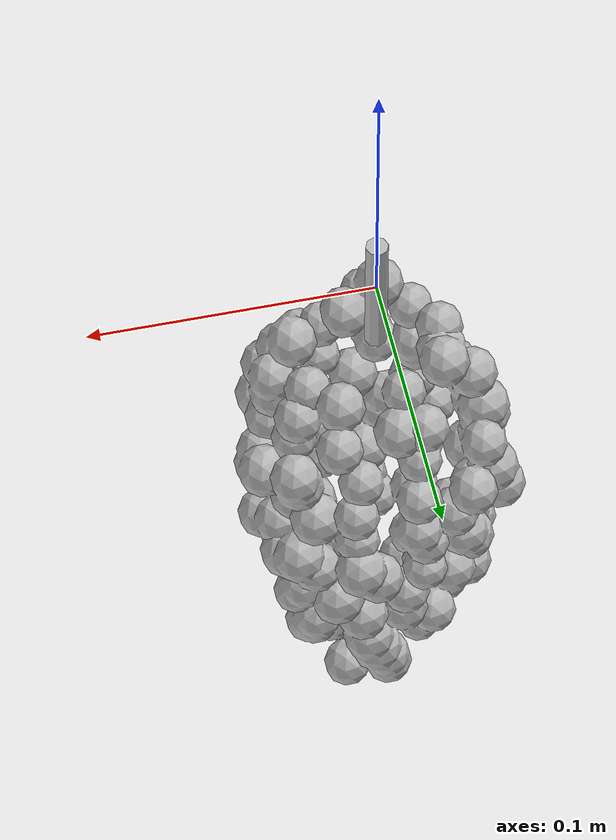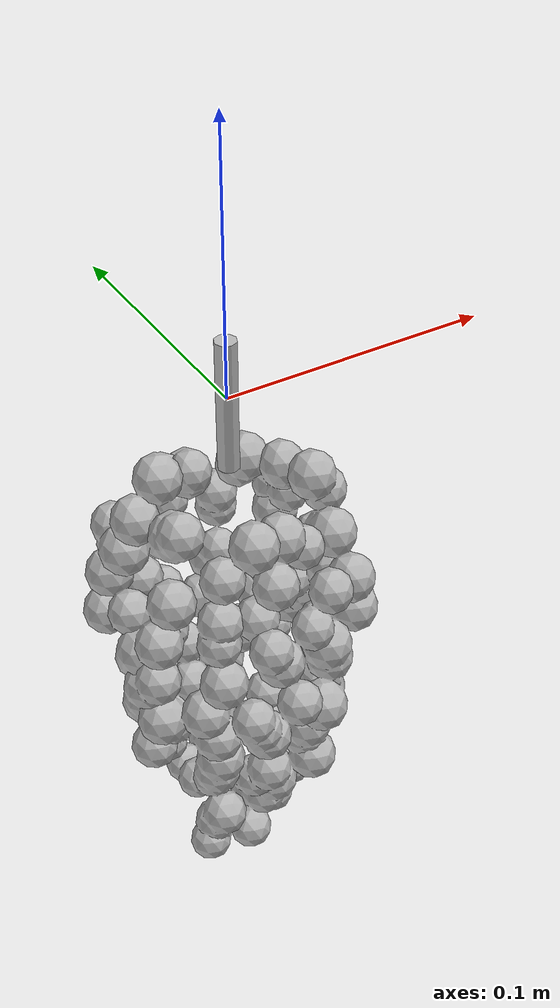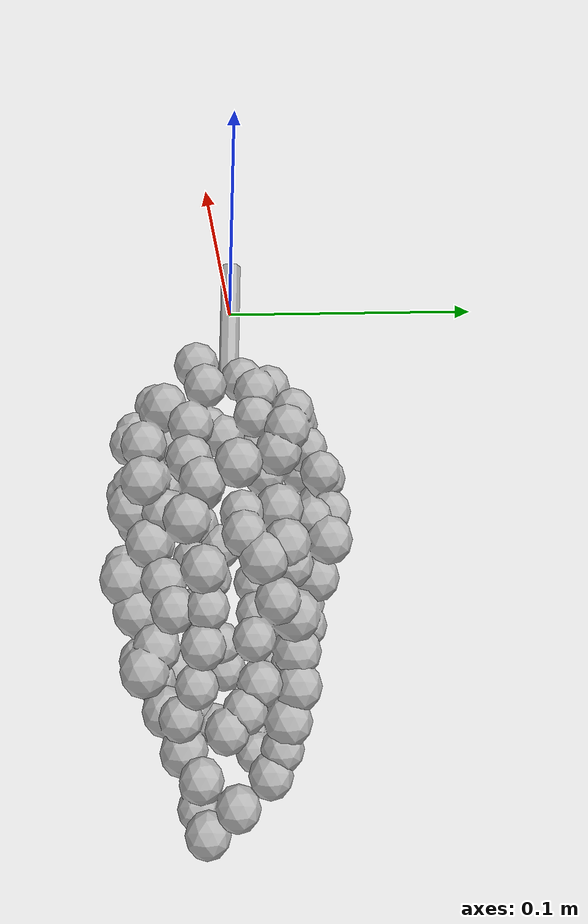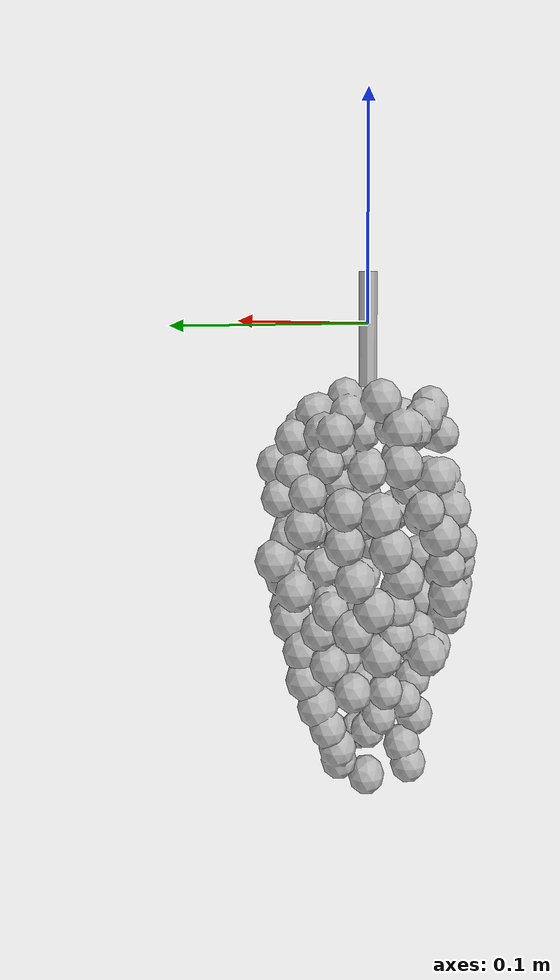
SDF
<?xml version='1.0' encoding='utf-8'?>
<sdf version="1.6">
  <model name="grape_bunch_kyoho_black">
    <link name="bunch">
      <gravity>false</gravity>
      <inertial>
        <pose>0.000482909 0.000467824 -0.121924 0 0 0</pose>
        <mass>0.15</mass>
        <inertia>
          <ixx>0.000620469</ixx>
          <iyy>0.000615636</iyy>
          <izz>0.00024592</izz>
          <ixy>0</ixy>
          <ixz>0</ixz>
          <iyz>0</iyz>
        </inertia>
      </inertial>
      <collision name="berries">
        <pose>0.000482909 0.000467824 -0.121924 0 0 0</pose>
        <geometry>
          <box>
            <size>0.0982011 0.100151 0.199016</size>
          </box>
        </geometry>
      </collision>
      <visual name="berries">
        <geometry>
          <mesh>
            <uri>model://grape_bunch_kyoho_black/meshes/berries.obj</uri>
          </mesh>
        </geometry>
      </visual>
      <visual name="stem">
        <geometry>
          <mesh>
            <uri>model://grape_bunch_kyoho_black/meshes/stem.obj</uri>
          </mesh>
        </geometry>
      </visual>
    </link>
  </model>
</sdf>
